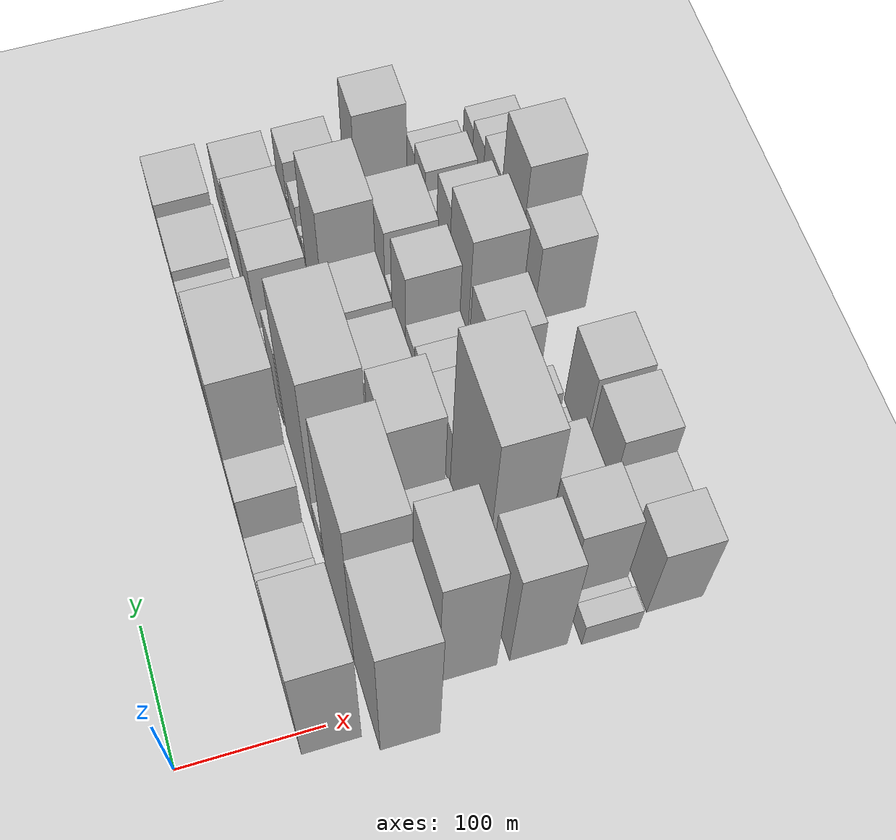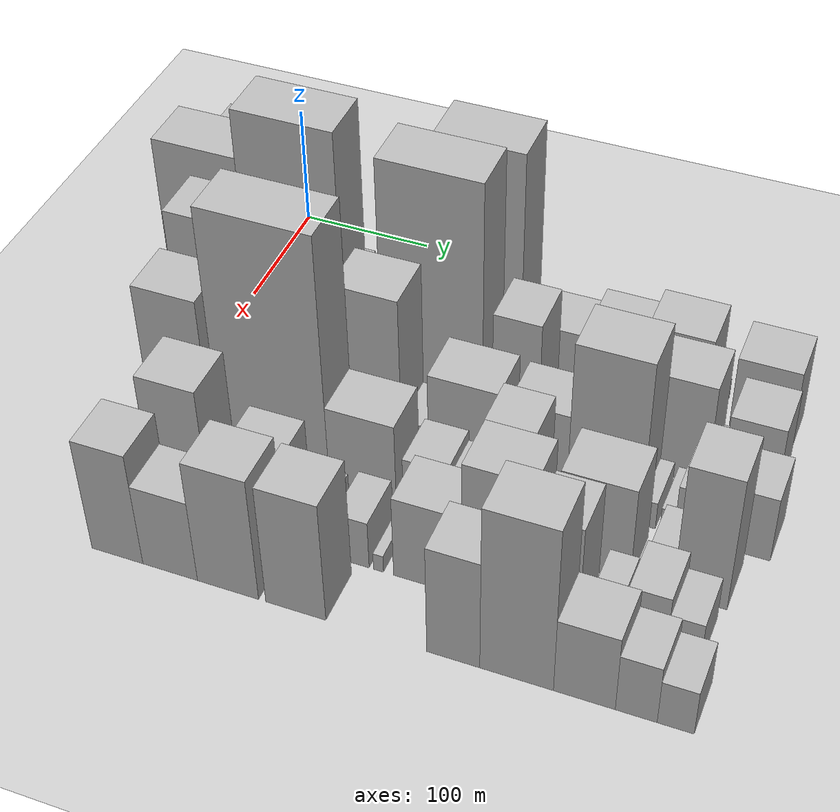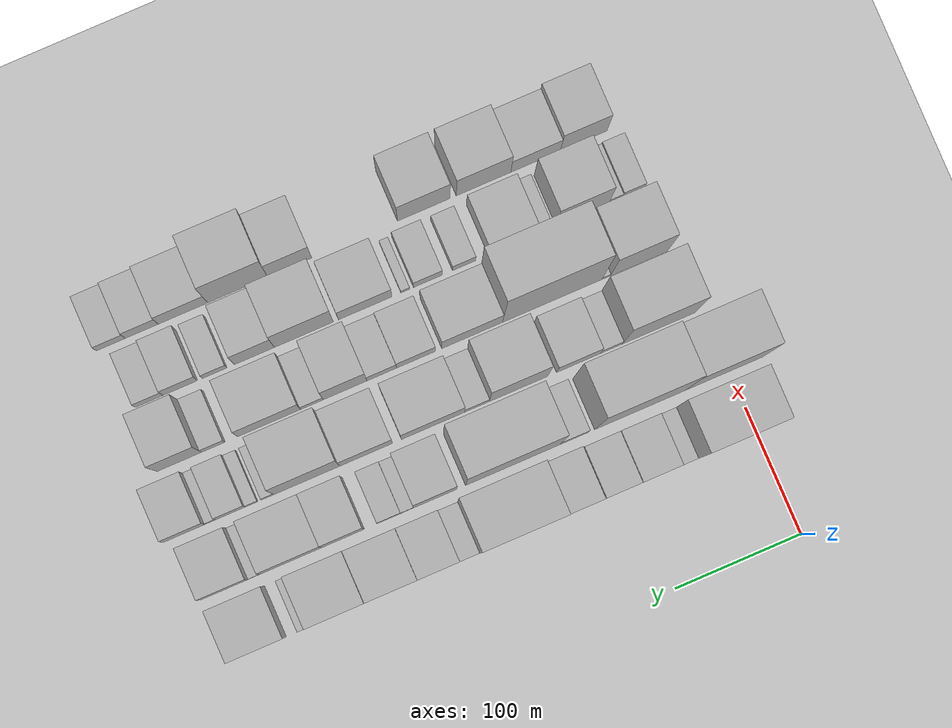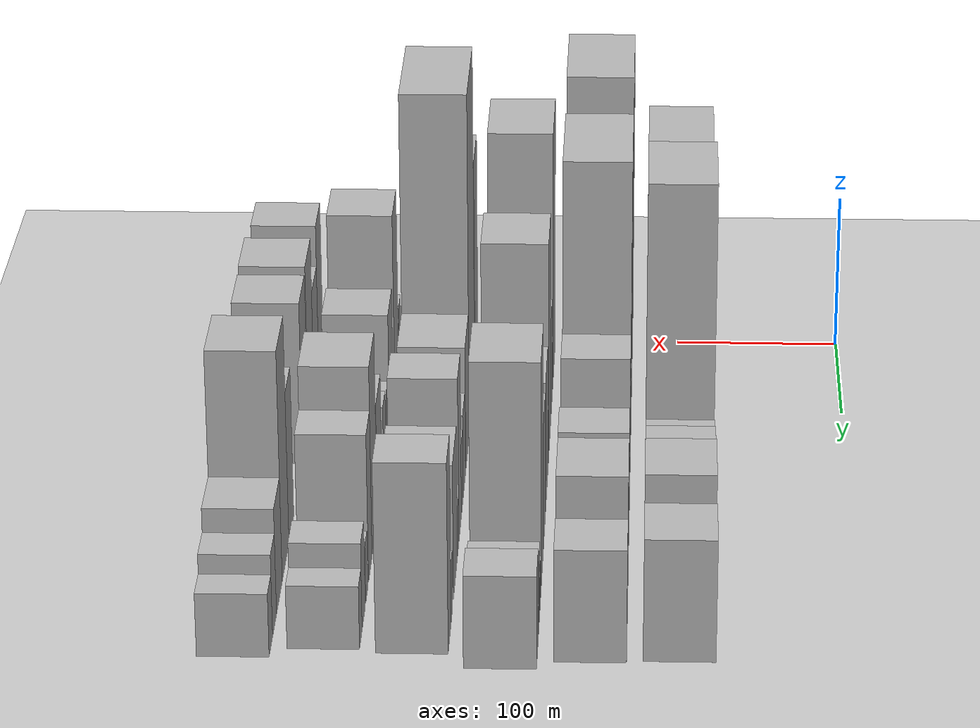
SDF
<sdf version="1.6">
 <world name="default">
  <include>
   <name>ground_plane_2</name>
   <uri>model://HANNAS_ground_plane</uri>
   <pose>100 0 0  0 0 0</pose>
  </include>
  <model name="building_25">
   <static>1</static>
   <pose>100.0000 17.2089 0 0.000000 0.000000 0.000000</pose>
   <link name="link">
    <pose>0 0 78.00 0 0 0</pose>
    <collision name="collision"><geometry><box><size>40.0000 61.8706 156.0000</size></box></geometry></collision>
    <visual name="visual">
     <cast_shadows>0</cast_shadows>
     <geometry><box><size>40.0000 61.8706 156.0000</size></box></geometry>
     <material>
      <script>
       <uri>model://HANNAS_wall/materials/scripts</uri>
       <uri>model://HANNAS_wall/materials/textures</uri>
       <name>vrc/HANNAS_wall</name>
      </script>
     </material>
    </visual>
   </link>
  </model>
  <model name="building_26">
   <static>1</static>
   <pose>100.0000 54.8192 0 0.000000 0.000000 0.000000</pose>
   <link name="link">
    <pose>0 0 13.50 0 0 0</pose>
    <collision name="collision"><geometry><box><size>40.0000 13.3501 27.0000</size></box></geometry></collision>
    <visual name="visual">
     <cast_shadows>0</cast_shadows>
     <geometry><box><size>40.0000 13.3501 27.0000</size></box></geometry>
     <material>
      <script>
       <uri>model://HANNAS_wall/materials/scripts</uri>
       <uri>model://HANNAS_wall/materials/textures</uri>
       <name>vrc/HANNAS_wall</name>
      </script>
     </material>
    </visual>
   </link>
  </model>
  <model name="building_27">
   <static>1</static>
   <pose>100.0000 77.1365 0 0.000000 0.000000 0.000000</pose>
   <link name="link">
    <pose>0 0 27.00 0 0 0</pose>
    <collision name="collision"><geometry><box><size>40.0000 31.2846 54.0000</size></box></geometry></collision>
    <visual name="visual">
     <cast_shadows>0</cast_shadows>
     <geometry><box><size>40.0000 31.2846 54.0000</size></box></geometry>
     <material>
      <script>
       <uri>model://HANNAS_wall/materials/scripts</uri>
       <uri>model://HANNAS_wall/materials/textures</uri>
       <name>vrc/HANNAS_wall</name>
      </script>
     </material>
    </visual>
   </link>
  </model>
  <model name="building_28">
   <static>1</static>
   <pose>100.0000 106.9000 0 0.000000 0.000000 0.000000</pose>
   <link name="link">
    <pose>0 0 24.00 0 0 0</pose>
    <collision name="collision"><geometry><box><size>40.0000 28.2425 48.0000</size></box></geometry></collision>
    <visual name="visual">
     <cast_shadows>0</cast_shadows>
     <geometry><box><size>40.0000 28.2425 48.0000</size></box></geometry>
     <material>
      <script>
       <uri>model://HANNAS_wall/materials/scripts</uri>
       <uri>model://HANNAS_wall/materials/textures</uri>
       <name>vrc/HANNAS_wall</name>
      </script>
     </material>
    </visual>
   </link>
  </model>
  <model name="building_29">
   <static>1</static>
   <pose>100.0000 139.3594 0 0.000000 0.000000 0.000000</pose>
   <link name="link">
    <pose>0 0 49.50 0 0 0</pose>
    <collision name="collision"><geometry><box><size>40.0000 30.6763 99.0000</size></box></geometry></collision>
    <visual name="visual">
     <cast_shadows>0</cast_shadows>
     <geometry><box><size>40.0000 30.6763 99.0000</size></box></geometry>
     <material>
      <script>
       <uri>model://HANNAS_wall/materials/scripts</uri>
       <uri>model://HANNAS_wall/materials/textures</uri>
       <name>vrc/HANNAS_wall</name>
      </script>
     </material>
    </visual>
   </link>
  </model>
  <model name="building_30">
   <static>1</static>
   <pose>100.0000 187.0730 0 0.000000 0.000000 0.000000</pose>
   <link name="link">
    <pose>0 0 100.50 0 0 0</pose>
    <collision name="collision"><geometry><box><size>40.0000 64.7509 201.0000</size></box></geometry></collision>
    <visual name="visual">
     <cast_shadows>0</cast_shadows>
     <geometry><box><size>40.0000 64.7509 201.0000</size></box></geometry>
     <material>
      <script>
       <uri>model://HANNAS_wall/materials/scripts</uri>
       <uri>model://HANNAS_wall/materials/textures</uri>
       <name>vrc/HANNAS_wall</name>
      </script>
     </material>
    </visual>
   </link>
  </model>
  <model name="building_31">
   <static>1</static>
   <pose>100.0000 227.3169 0 0.000000 0.000000 0.000000</pose>
   <link name="link">
    <pose>0 0 15.00 0 0 0</pose>
    <collision name="collision"><geometry><box><size>40.0000 15.7369 30.0000</size></box></geometry></collision>
    <visual name="visual">
     <cast_shadows>0</cast_shadows>
     <geometry><box><size>40.0000 15.7369 30.0000</size></box></geometry>
     <material>
      <script>
       <uri>model://HANNAS_wall/materials/scripts</uri>
       <uri>model://HANNAS_wall/materials/textures</uri>
       <name>vrc/HANNAS_wall</name>
      </script>
     </material>
    </visual>
   </link>
  </model>
  <model name="building_32">
   <static>1</static>
   <pose>100.0000 251.6223 0 0.000000 0.000000 0.000000</pose>
   <link name="link">
    <pose>0 0 30.00 0 0 0</pose>
    <collision name="collision"><geometry><box><size>40.0000 32.8740 60.0000</size></box></geometry></collision>
    <visual name="visual">
     <cast_shadows>0</cast_shadows>
     <geometry><box><size>40.0000 32.8740 60.0000</size></box></geometry>
     <material>
      <script>
       <uri>model://HANNAS_wall/materials/scripts</uri>
       <uri>model://HANNAS_wall/materials/textures</uri>
       <name>vrc/HANNAS_wall</name>
      </script>
     </material>
    </visual>
   </link>
  </model>
  <model name="building_33">
   <static>1</static>
   <pose>100.0000 288.4616 0 0.000000 0.000000 0.000000</pose>
   <link name="link">
    <pose>0 0 36.00 0 0 0</pose>
    <collision name="collision"><geometry><box><size>40.0000 40.8045 72.0000</size></box></geometry></collision>
    <visual name="visual">
     <cast_shadows>0</cast_shadows>
     <geometry><box><size>40.0000 40.8045 72.0000</size></box></geometry>
     <material>
      <script>
       <uri>model://HANNAS_wall/materials/scripts</uri>
       <uri>model://HANNAS_wall/materials/textures</uri>
       <name>vrc/HANNAS_wall</name>
      </script>
     </material>
    </visual>
   </link>
  </model>
  <model name="building_34">
   <static>1</static>
   <pose>100.0000 331.8879 0 0.000000 0.000000 0.000000</pose>
   <link name="link">
    <pose>0 0 42.00 0 0 0</pose>
    <collision name="collision"><geometry><box><size>40.0000 46.0480 84.0000</size></box></geometry></collision>
    <visual name="visual">
     <cast_shadows>0</cast_shadows>
     <geometry><box><size>40.0000 46.0480 84.0000</size></box></geometry>
     <material>
      <script>
       <uri>model://HANNAS_wall/materials/scripts</uri>
       <uri>model://HANNAS_wall/materials/textures</uri>
       <name>vrc/HANNAS_wall</name>
      </script>
     </material>
    </visual>
   </link>
  </model>
  <model name="building_35">
   <static>1</static>
   <pose>100.0000 358.6798 0 0.000000 0.000000 0.000000</pose>
   <link name="link">
    <pose>0 0 9.00 0 0 0</pose>
    <collision name="collision"><geometry><box><size>40.0000 7.5359 18.0000</size></box></geometry></collision>
    <visual name="visual">
     <cast_shadows>0</cast_shadows>
     <geometry><box><size>40.0000 7.5359 18.0000</size></box></geometry>
     <material>
      <script>
       <uri>model://HANNAS_wall/materials/scripts</uri>
       <uri>model://HANNAS_wall/materials/textures</uri>
       <name>vrc/HANNAS_wall</name>
      </script>
     </material>
    </visual>
   </link>
  </model>
  <model name="building_36">
   <static>1</static>
   <pose>100.0000 393.4195 0 0.000000 0.000000 0.000000</pose>
   <link name="link">
    <pose>0 0 37.50 0 0 0</pose>
    <collision name="collision"><geometry><box><size>40.0000 43.9435 75.0000</size></box></geometry></collision>
    <visual name="visual">
     <cast_shadows>0</cast_shadows>
     <geometry><box><size>40.0000 43.9435 75.0000</size></box></geometry>
     <material>
      <script>
       <uri>model://HANNAS_wall/materials/scripts</uri>
       <uri>model://HANNAS_wall/materials/textures</uri>
       <name>vrc/HANNAS_wall</name>
      </script>
     </material>
    </visual>
   </link>
  </model>
  <model name="building_69">
   <static>1</static>
   <pose>149.0000 4.9177 0 0.000000 0.000000 0.000000</pose>
   <link name="link">
    <pose>0 0 91.50 0 0 0</pose>
    <collision name="collision"><geometry><box><size>40.0000 61.0801 183.0000</size></box></geometry></collision>
    <visual name="visual">
     <cast_shadows>0</cast_shadows>
     <geometry><box><size>40.0000 61.0801 183.0000</size></box></geometry>
     <material>
      <script>
       <uri>model://HANNAS_wall/materials/scripts</uri>
       <uri>model://HANNAS_wall/materials/textures</uri>
       <name>vrc/HANNAS_wall</name>
      </script>
     </material>
    </visual>
   </link>
  </model>
  <model name="building_70">
   <static>1</static>
   <pose>149.0000 71.3182 0 0.000000 0.000000 0.000000</pose>
   <link name="link">
    <pose>0 0 111.00 0 0 0</pose>
    <collision name="collision"><geometry><box><size>40.0000 71.7209 222.0000</size></box></geometry></collision>
    <visual name="visual">
     <cast_shadows>0</cast_shadows>
     <geometry><box><size>40.0000 71.7209 222.0000</size></box></geometry>
     <material>
      <script>
       <uri>model://HANNAS_wall/materials/scripts</uri>
       <uri>model://HANNAS_wall/materials/textures</uri>
       <name>vrc/HANNAS_wall</name>
      </script>
     </material>
    </visual>
   </link>
  </model>
  <model name="building_71">
   <static>1</static>
   <pose>149.0000 123.4965 0 0.000000 0.000000 0.000000</pose>
   <link name="link">
    <pose>0 0 21.00 0 0 0</pose>
    <collision name="collision"><geometry><box><size>40.0000 22.6356 42.0000</size></box></geometry></collision>
    <visual name="visual">
     <cast_shadows>0</cast_shadows>
     <geometry><box><size>40.0000 22.6356 42.0000</size></box></geometry>
     <material>
      <script>
       <uri>model://HANNAS_wall/materials/scripts</uri>
       <uri>model://HANNAS_wall/materials/textures</uri>
       <name>vrc/HANNAS_wall</name>
      </script>
     </material>
    </visual>
   </link>
  </model>
  <model name="building_72">
   <static>1</static>
   <pose>149.0000 171.9671 0 0.000000 0.000000 0.000000</pose>
   <link name="link">
    <pose>0 0 105.00 0 0 0</pose>
    <collision name="collision"><geometry><box><size>40.0000 74.3057 210.0000</size></box></geometry></collision>
    <visual name="visual">
     <cast_shadows>0</cast_shadows>
     <geometry><box><size>40.0000 74.3057 210.0000</size></box></geometry>
     <material>
      <script>
       <uri>model://HANNAS_wall/materials/scripts</uri>
       <uri>model://HANNAS_wall/materials/textures</uri>
       <name>vrc/HANNAS_wall</name>
      </script>
     </material>
    </visual>
   </link>
  </model>
  <model name="building_73">
   <static>1</static>
   <pose>149.0000 233.1478 0 0.000000 0.000000 0.000000</pose>
   <link name="link">
    <pose>0 0 52.50 0 0 0</pose>
    <collision name="collision"><geometry><box><size>40.0000 34.0557 105.0000</size></box></geometry></collision>
    <visual name="visual">
     <cast_shadows>0</cast_shadows>
     <geometry><box><size>40.0000 34.0557 105.0000</size></box></geometry>
     <material>
      <script>
       <uri>model://HANNAS_wall/materials/scripts</uri>
       <uri>model://HANNAS_wall/materials/textures</uri>
       <name>vrc/HANNAS_wall</name>
      </script>
     </material>
    </visual>
   </link>
  </model>
  <model name="building_74">
   <static>1</static>
   <pose>149.0000 255.2530 0 0.000000 0.000000 0.000000</pose>
   <link name="link">
    <pose>0 0 12.00 0 0 0</pose>
    <collision name="collision"><geometry><box><size>40.0000 10.1547 24.0000</size></box></geometry></collision>
    <visual name="visual">
     <cast_shadows>0</cast_shadows>
     <geometry><box><size>40.0000 10.1547 24.0000</size></box></geometry>
     <material>
      <script>
       <uri>model://HANNAS_wall/materials/scripts</uri>
       <uri>model://HANNAS_wall/materials/textures</uri>
       <name>vrc/HANNAS_wall</name>
      </script>
     </material>
    </visual>
   </link>
  </model>
  <model name="building_75">
   <static>1</static>
   <pose>149.0000 269.5884 0 0.000000 0.000000 0.000000</pose>
   <link name="link">
    <pose>0 0 16.50 0 0 0</pose>
    <collision name="collision"><geometry><box><size>40.0000 18.5161 33.0000</size></box></geometry></collision>
    <visual name="visual">
     <cast_shadows>0</cast_shadows>
     <geometry><box><size>40.0000 18.5161 33.0000</size></box></geometry>
     <material>
      <script>
       <uri>model://HANNAS_wall/materials/scripts</uri>
       <uri>model://HANNAS_wall/materials/textures</uri>
       <name>vrc/HANNAS_wall</name>
      </script>
     </material>
    </visual>
   </link>
  </model>
  <model name="building_76">
   <static>1</static>
   <pose>149.0000 305.3534 0 0.000000 0.000000 0.000000</pose>
   <link name="link">
    <pose>0 0 46.50 0 0 0</pose>
    <collision name="collision"><geometry><box><size>40.0000 33.0138 93.0000</size></box></geometry></collision>
    <visual name="visual">
     <cast_shadows>0</cast_shadows>
     <geometry><box><size>40.0000 33.0138 93.0000</size></box></geometry>
     <material>
      <script>
       <uri>model://HANNAS_wall/materials/scripts</uri>
       <uri>model://HANNAS_wall/materials/textures</uri>
       <name>vrc/HANNAS_wall</name>
      </script>
     </material>
    </visual>
   </link>
  </model>
  <model name="building_77">
   <static>1</static>
   <pose>149.0000 345.8923 0 0.000000 0.000000 0.000000</pose>
   <link name="link">
    <pose>0 0 45.00 0 0 0</pose>
    <collision name="collision"><geometry><box><size>40.0000 48.0641 90.0000</size></box></geometry></collision>
    <visual name="visual">
     <cast_shadows>0</cast_shadows>
     <geometry><box><size>40.0000 48.0641 90.0000</size></box></geometry>
     <material>
      <script>
       <uri>model://HANNAS_wall/materials/scripts</uri>
       <uri>model://HANNAS_wall/materials/textures</uri>
       <name>vrc/HANNAS_wall</name>
      </script>
     </material>
    </visual>
   </link>
  </model>
  <model name="building_78">
   <static>1</static>
   <pose>149.0000 374.8563 0 0.000000 0.000000 0.000000</pose>
   <link name="link">
    <pose>0 0 10.50 0 0 0</pose>
    <collision name="collision"><geometry><box><size>40.0000 9.8639 21.0000</size></box></geometry></collision>
    <visual name="visual">
     <cast_shadows>0</cast_shadows>
     <geometry><box><size>40.0000 9.8639 21.0000</size></box></geometry>
     <material>
      <script>
       <uri>model://HANNAS_wall/materials/scripts</uri>
       <uri>model://HANNAS_wall/materials/textures</uri>
       <name>vrc/HANNAS_wall</name>
      </script>
     </material>
    </visual>
   </link>
  </model>
  <model name="building_79">
   <static>1</static>
   <pose>149.0000 398.5782 0 0.000000 0.000000 0.000000</pose>
   <link name="link">
    <pose>0 0 34.50 0 0 0</pose>
    <collision name="collision"><geometry><box><size>40.0000 37.5798 69.0000</size></box></geometry></collision>
    <visual name="visual">
     <cast_shadows>0</cast_shadows>
     <geometry><box><size>40.0000 37.5798 69.0000</size></box></geometry>
     <material>
      <script>
       <uri>model://HANNAS_wall/materials/scripts</uri>
       <uri>model://HANNAS_wall/materials/textures</uri>
       <name>vrc/HANNAS_wall</name>
      </script>
     </material>
    </visual>
   </link>
  </model>
  <model name="building_114">
   <static>1</static>
   <pose>198.0000 35.4168 0 0.000000 0.000000 0.000000</pose>
   <link name="link">
    <pose>0 0 84.00 0 0 0</pose>
    <collision name="collision"><geometry><box><size>40.0000 57.6009 168.0000</size></box></geometry></collision>
    <visual name="visual">
     <cast_shadows>0</cast_shadows>
     <geometry><box><size>40.0000 57.6009 168.0000</size></box></geometry>
     <material>
      <script>
       <uri>model://HANNAS_wall/materials/scripts</uri>
       <uri>model://HANNAS_wall/materials/textures</uri>
       <name>vrc/HANNAS_wall</name>
      </script>
     </material>
    </visual>
   </link>
  </model>
  <model name="building_115">
   <static>1</static>
   <pose>198.0000 72.8613 0 0.000000 0.000000 0.000000</pose>
   <link name="link">
    <pose>0 0 16.50 0 0 0</pose>
    <collision name="collision"><geometry><box><size>40.0000 17.2882 33.0000</size></box></geometry></collision>
    <visual name="visual">
     <cast_shadows>0</cast_shadows>
     <geometry><box><size>40.0000 17.2882 33.0000</size></box></geometry>
     <material>
      <script>
       <uri>model://HANNAS_wall/materials/scripts</uri>
       <uri>model://HANNAS_wall/materials/textures</uri>
       <name>vrc/HANNAS_wall</name>
      </script>
     </material>
    </visual>
   </link>
  </model>
  <model name="building_116">
   <static>1</static>
   <pose>198.0000 98.7716 0 0.000000 0.000000 0.000000</pose>
   <link name="link">
    <pose>0 0 33.00 0 0 0</pose>
    <collision name="collision"><geometry><box><size>40.0000 34.5324 66.0000</size></box></geometry></collision>
    <visual name="visual">
     <cast_shadows>0</cast_shadows>
     <geometry><box><size>40.0000 34.5324 66.0000</size></box></geometry>
     <material>
      <script>
       <uri>model://HANNAS_wall/materials/scripts</uri>
       <uri>model://HANNAS_wall/materials/textures</uri>
       <name>vrc/HANNAS_wall</name>
      </script>
     </material>
    </visual>
   </link>
  </model>
  <model name="building_117">
   <static>1</static>
   <pose>198.0000 146.1506 0 0.000000 0.000000 0.000000</pose>
   <link name="link">
    <pose>0 0 70.50 0 0 0</pose>
    <collision name="collision"><geometry><box><size>40.0000 46.2255 141.0000</size></box></geometry></collision>
    <visual name="visual">
     <cast_shadows>0</cast_shadows>
     <geometry><box><size>40.0000 46.2255 141.0000</size></box></geometry>
     <material>
      <script>
       <uri>model://HANNAS_wall/materials/scripts</uri>
       <uri>model://HANNAS_wall/materials/textures</uri>
       <name>vrc/HANNAS_wall</name>
      </script>
     </material>
    </visual>
   </link>
  </model>
  <model name="building_118">
   <static>1</static>
   <pose>198.0000 178.9549 0 0.000000 0.000000 0.000000</pose>
   <link name="link">
    <pose>0 0 18.00 0 0 0</pose>
    <collision name="collision"><geometry><box><size>40.0000 19.3832 36.0000</size></box></geometry></collision>
    <visual name="visual">
     <cast_shadows>0</cast_shadows>
     <geometry><box><size>40.0000 19.3832 36.0000</size></box></geometry>
     <material>
      <script>
       <uri>model://HANNAS_wall/materials/scripts</uri>
       <uri>model://HANNAS_wall/materials/textures</uri>
       <name>vrc/HANNAS_wall</name>
      </script>
     </material>
    </visual>
   </link>
  </model>
  <model name="building_119">
   <static>1</static>
   <pose>198.0000 213.5854 0 0.000000 0.000000 0.000000</pose>
   <link name="link">
    <pose>0 0 42.00 0 0 0</pose>
    <collision name="collision"><geometry><box><size>40.0000 49.8778 84.0000</size></box></geometry></collision>
    <visual name="visual">
     <cast_shadows>0</cast_shadows>
     <geometry><box><size>40.0000 49.8778 84.0000</size></box></geometry>
     <material>
      <script>
       <uri>model://HANNAS_wall/materials/scripts</uri>
       <uri>model://HANNAS_wall/materials/textures</uri>
       <name>vrc/HANNAS_wall</name>
      </script>
     </material>
    </visual>
   </link>
  </model>
  <model name="building_120">
   <static>1</static>
   <pose>198.0000 266.2450 0 0.000000 0.000000 0.000000</pose>
   <link name="link">
    <pose>0 0 40.50 0 0 0</pose>
    <collision name="collision"><geometry><box><size>40.0000 41.4412 81.0000</size></box></geometry></collision>
    <visual name="visual">
     <cast_shadows>0</cast_shadows>
     <geometry><box><size>40.0000 41.4412 81.0000</size></box></geometry>
     <material>
      <script>
       <uri>model://HANNAS_wall/materials/scripts</uri>
       <uri>model://HANNAS_wall/materials/textures</uri>
       <name>vrc/HANNAS_wall</name>
      </script>
     </material>
    </visual>
   </link>
  </model>
  <model name="building_121">
   <static>1</static>
   <pose>198.0000 312.8597 0 0.000000 0.000000 0.000000</pose>
   <link name="link">
    <pose>0 0 72.00 0 0 0</pose>
    <collision name="collision"><geometry><box><size>40.0000 51.7882 144.0000</size></box></geometry></collision>
    <visual name="visual">
     <cast_shadows>0</cast_shadows>
     <geometry><box><size>40.0000 51.7882 144.0000</size></box></geometry>
     <material>
      <script>
       <uri>model://HANNAS_wall/materials/scripts</uri>
       <uri>model://HANNAS_wall/materials/textures</uri>
       <name>vrc/HANNAS_wall</name>
      </script>
     </material>
    </visual>
   </link>
  </model>
  <model name="building_122">
   <static>1</static>
   <pose>198.0000 343.7553 0 0.000000 0.000000 0.000000</pose>
   <link name="link">
    <pose>0 0 12.00 0 0 0</pose>
    <collision name="collision"><geometry><box><size>40.0000 10.0031 24.0000</size></box></geometry></collision>
    <visual name="visual">
     <cast_shadows>0</cast_shadows>
     <geometry><box><size>40.0000 10.0031 24.0000</size></box></geometry>
     <material>
      <script>
       <uri>model://HANNAS_wall/materials/scripts</uri>
       <uri>model://HANNAS_wall/materials/textures</uri>
       <name>vrc/HANNAS_wall</name>
      </script>
     </material>
    </visual>
   </link>
  </model>
  <model name="building_123">
   <static>1</static>
   <pose>198.0000 356.6241 0 0.000000 0.000000 0.000000</pose>
   <link name="link">
    <pose>0 0 10.50 0 0 0</pose>
    <collision name="collision"><geometry><box><size>40.0000 9.7346 21.0000</size></box></geometry></collision>
    <visual name="visual">
     <cast_shadows>0</cast_shadows>
     <geometry><box><size>40.0000 9.7346 21.0000</size></box></geometry>
     <material>
      <script>
       <uri>model://HANNAS_wall/materials/scripts</uri>
       <uri>model://HANNAS_wall/materials/textures</uri>
       <name>vrc/HANNAS_wall</name>
      </script>
     </material>
    </visual>
   </link>
  </model>
  <model name="building_124">
   <static>1</static>
   <pose>198.0000 373.1696 0 0.000000 0.000000 0.000000</pose>
   <link name="link">
    <pose>0 0 22.50 0 0 0</pose>
    <collision name="collision"><geometry><box><size>40.0000 23.3564 45.0000</size></box></geometry></collision>
    <visual name="visual">
     <cast_shadows>0</cast_shadows>
     <geometry><box><size>40.0000 23.3564 45.0000</size></box></geometry>
     <material>
      <script>
       <uri>model://HANNAS_wall/materials/scripts</uri>
       <uri>model://HANNAS_wall/materials/textures</uri>
       <name>vrc/HANNAS_wall</name>
      </script>
     </material>
    </visual>
   </link>
  </model>
  <model name="building_125">
   <static>1</static>
   <pose>198.0000 388.9677 0 0.000000 0.000000 0.000000</pose>
   <link name="link">
    <pose>0 0 9.00 0 0 0</pose>
    <collision name="collision"><geometry><box><size>40.0000 8.2398 18.0000</size></box></geometry></collision>
    <visual name="visual">
     <cast_shadows>0</cast_shadows>
     <geometry><box><size>40.0000 8.2398 18.0000</size></box></geometry>
     <material>
      <script>
       <uri>model://HANNAS_wall/materials/scripts</uri>
       <uri>model://HANNAS_wall/materials/textures</uri>
       <name>vrc/HANNAS_wall</name>
      </script>
     </material>
    </visual>
   </link>
  </model>
  <model name="building_126">
   <static>1</static>
   <pose>198.0000 409.4354 0 0.000000 0.000000 0.000000</pose>
   <link name="link">
    <pose>0 0 28.50 0 0 0</pose>
    <collision name="collision"><geometry><box><size>40.0000 32.6957 57.0000</size></box></geometry></collision>
    <visual name="visual">
     <cast_shadows>0</cast_shadows>
     <geometry><box><size>40.0000 32.6957 57.0000</size></box></geometry>
     <material>
      <script>
       <uri>model://HANNAS_wall/materials/scripts</uri>
       <uri>model://HANNAS_wall/materials/textures</uri>
       <name>vrc/HANNAS_wall</name>
      </script>
     </material>
    </visual>
   </link>
  </model>
  <model name="building_162">
   <static>1</static>
   <pose>247.0000 29.4783 0 0.000000 0.000000 0.000000</pose>
   <link name="link">
    <pose>0 0 72.00 0 0 0</pose>
    <collision name="collision"><geometry><box><size>40.0000 45.3688 144.0000</size></box></geometry></collision>
    <visual name="visual">
     <cast_shadows>0</cast_shadows>
     <geometry><box><size>40.0000 45.3688 144.0000</size></box></geometry>
     <material>
      <script>
       <uri>model://HANNAS_wall/materials/scripts</uri>
       <uri>model://HANNAS_wall/materials/textures</uri>
       <name>vrc/HANNAS_wall</name>
      </script>
     </material>
    </visual>
   </link>
  </model>
  <model name="building_163">
   <static>1</static>
   <pose>247.0000 55.5226 0 0.000000 0.000000 0.000000</pose>
   <link name="link">
    <pose>0 0 7.50 0 0 0</pose>
    <collision name="collision"><geometry><box><size>40.0000 6.7197 15.0000</size></box></geometry></collision>
    <visual name="visual">
     <cast_shadows>0</cast_shadows>
     <geometry><box><size>40.0000 6.7197 15.0000</size></box></geometry>
     <material>
      <script>
       <uri>model://HANNAS_wall/materials/scripts</uri>
       <uri>model://HANNAS_wall/materials/textures</uri>
       <name>vrc/HANNAS_wall</name>
      </script>
     </material>
    </visual>
   </link>
  </model>
  <model name="building_164">
   <static>1</static>
   <pose>247.0000 98.2314 0 0.000000 0.000000 0.000000</pose>
   <link name="link">
    <pose>0 0 111.00 0 0 0</pose>
    <collision name="collision"><geometry><box><size>40.0000 78.6979 222.0000</size></box></geometry></collision>
    <visual name="visual">
     <cast_shadows>0</cast_shadows>
     <geometry><box><size>40.0000 78.6979 222.0000</size></box></geometry>
     <material>
      <script>
       <uri>model://HANNAS_wall/materials/scripts</uri>
       <uri>model://HANNAS_wall/materials/textures</uri>
       <name>vrc/HANNAS_wall</name>
      </script>
     </material>
    </visual>
   </link>
  </model>
  <model name="building_165">
   <static>1</static>
   <pose>247.0000 161.5563 0 0.000000 0.000000 0.000000</pose>
   <link name="link">
    <pose>0 0 40.50 0 0 0</pose>
    <collision name="collision"><geometry><box><size>40.0000 47.9520 81.0000</size></box></geometry></collision>
    <visual name="visual">
     <cast_shadows>0</cast_shadows>
     <geometry><box><size>40.0000 47.9520 81.0000</size></box></geometry>
     <material>
      <script>
       <uri>model://HANNAS_wall/materials/scripts</uri>
       <uri>model://HANNAS_wall/materials/textures</uri>
       <name>vrc/HANNAS_wall</name>
      </script>
     </material>
    </visual>
   </link>
  </model>
  <model name="building_166">
   <static>1</static>
   <pose>247.0000 205.8961 0 0.000000 0.000000 0.000000</pose>
   <link name="link">
    <pose>0 0 27.00 0 0 0</pose>
    <collision name="collision"><geometry><box><size>40.0000 30.7275 54.0000</size></box></geometry></collision>
    <visual name="visual">
     <cast_shadows>0</cast_shadows>
     <geometry><box><size>40.0000 30.7275 54.0000</size></box></geometry>
     <material>
      <script>
       <uri>model://HANNAS_wall/materials/scripts</uri>
       <uri>model://HANNAS_wall/materials/textures</uri>
       <name>vrc/HANNAS_wall</name>
      </script>
     </material>
    </visual>
   </link>
  </model>
  <model name="building_167">
   <static>1</static>
   <pose>247.0000 232.9688 0 0.000000 0.000000 0.000000</pose>
   <link name="link">
    <pose>0 0 22.50 0 0 0</pose>
    <collision name="collision"><geometry><box><size>40.0000 23.4178 45.0000</size></box></geometry></collision>
    <visual name="visual">
     <cast_shadows>0</cast_shadows>
     <geometry><box><size>40.0000 23.4178 45.0000</size></box></geometry>
     <material>
      <script>
       <uri>model://HANNAS_wall/materials/scripts</uri>
       <uri>model://HANNAS_wall/materials/textures</uri>
       <name>vrc/HANNAS_wall</name>
      </script>
     </material>
    </visual>
   </link>
  </model>
  <model name="building_168">
   <static>1</static>
   <pose>247.0000 261.8879 0 0.000000 0.000000 0.000000</pose>
   <link name="link">
    <pose>0 0 52.50 0 0 0</pose>
    <collision name="collision"><geometry><box><size>40.0000 34.4205 105.0000</size></box></geometry></collision>
    <visual name="visual">
     <cast_shadows>0</cast_shadows>
     <geometry><box><size>40.0000 34.4205 105.0000</size></box></geometry>
     <material>
      <script>
       <uri>model://HANNAS_wall/materials/scripts</uri>
       <uri>model://HANNAS_wall/materials/textures</uri>
       <name>vrc/HANNAS_wall</name>
      </script>
     </material>
    </visual>
   </link>
  </model>
  <model name="building_169">
   <static>1</static>
   <pose>247.0000 288.0005 0 0.000000 0.000000 0.000000</pose>
   <link name="link">
    <pose>0 0 15.00 0 0 0</pose>
    <collision name="collision"><geometry><box><size>40.0000 17.8047 30.0000</size></box></geometry></collision>
    <visual name="visual">
     <cast_shadows>0</cast_shadows>
     <geometry><box><size>40.0000 17.8047 30.0000</size></box></geometry>
     <material>
      <script>
       <uri>model://HANNAS_wall/materials/scripts</uri>
       <uri>model://HANNAS_wall/materials/textures</uri>
       <name>vrc/HANNAS_wall</name>
      </script>
     </material>
    </visual>
   </link>
  </model>
  <model name="building_170">
   <static>1</static>
   <pose>247.0000 321.7144 0 0.000000 0.000000 0.000000</pose>
   <link name="link">
    <pose>0 0 42.00 0 0 0</pose>
    <collision name="collision"><geometry><box><size>40.0000 49.6230 84.0000</size></box></geometry></collision>
    <visual name="visual">
     <cast_shadows>0</cast_shadows>
     <geometry><box><size>40.0000 49.6230 84.0000</size></box></geometry>
     <material>
      <script>
       <uri>model://HANNAS_wall/materials/scripts</uri>
       <uri>model://HANNAS_wall/materials/textures</uri>
       <name>vrc/HANNAS_wall</name>
      </script>
     </material>
    </visual>
   </link>
  </model>
  <model name="building_171">
   <static>1</static>
   <pose>247.0000 365.6499 0 0.000000 0.000000 0.000000</pose>
   <link name="link">
    <pose>0 0 18.00 0 0 0</pose>
    <collision name="collision"><geometry><box><size>40.0000 18.2480 36.0000</size></box></geometry></collision>
    <visual name="visual">
     <cast_shadows>0</cast_shadows>
     <geometry><box><size>40.0000 18.2480 36.0000</size></box></geometry>
     <material>
      <script>
       <uri>model://HANNAS_wall/materials/scripts</uri>
       <uri>model://HANNAS_wall/materials/textures</uri>
       <name>vrc/HANNAS_wall</name>
      </script>
     </material>
    </visual>
   </link>
  </model>
  <model name="building_172">
   <static>1</static>
   <pose>247.0000 392.4351 0 0.000000 0.000000 0.000000</pose>
   <link name="link">
    <pose>0 0 58.50 0 0 0</pose>
    <collision name="collision"><geometry><box><size>40.0000 35.3224 117.0000</size></box></geometry></collision>
    <visual name="visual">
     <cast_shadows>0</cast_shadows>
     <geometry><box><size>40.0000 35.3224 117.0000</size></box></geometry>
     <material>
      <script>
       <uri>model://HANNAS_wall/materials/scripts</uri>
       <uri>model://HANNAS_wall/materials/textures</uri>
       <name>vrc/HANNAS_wall</name>
      </script>
     </material>
    </visual>
   </link>
  </model>
  <model name="building_209">
   <static>1</static>
   <pose>296.0000 12.3411 0 0.000000 0.000000 0.000000</pose>
   <link name="link">
    <pose>0 0 16.50 0 0 0</pose>
    <collision name="collision"><geometry><box><size>40.0000 17.5807 33.0000</size></box></geometry></collision>
    <visual name="visual">
     <cast_shadows>0</cast_shadows>
     <geometry><box><size>40.0000 17.5807 33.0000</size></box></geometry>
     <material>
      <script>
       <uri>model://HANNAS_wall/materials/scripts</uri>
       <uri>model://HANNAS_wall/materials/textures</uri>
       <name>vrc/HANNAS_wall</name>
      </script>
     </material>
    </visual>
   </link>
  </model>
  <model name="building_210">
   <static>1</static>
   <pose>296.0000 26.5207 0 0.000000 0.000000 0.000000</pose>
   <link name="link">
    <pose>0 0 12.00 0 0 0</pose>
    <collision name="collision"><geometry><box><size>40.0000 10.7784 24.0000</size></box></geometry></collision>
    <visual name="visual">
     <cast_shadows>0</cast_shadows>
     <geometry><box><size>40.0000 10.7784 24.0000</size></box></geometry>
     <material>
      <script>
       <uri>model://HANNAS_wall/materials/scripts</uri>
       <uri>model://HANNAS_wall/materials/textures</uri>
       <name>vrc/HANNAS_wall</name>
      </script>
     </material>
    </visual>
   </link>
  </model>
  <model name="building_211">
   <static>1</static>
   <pose>296.0000 52.9325 0 0.000000 0.000000 0.000000</pose>
   <link name="link">
    <pose>0 0 58.50 0 0 0</pose>
    <collision name="collision"><geometry><box><size>40.0000 42.0452 117.0000</size></box></geometry></collision>
    <visual name="visual">
     <cast_shadows>0</cast_shadows>
     <geometry><box><size>40.0000 42.0452 117.0000</size></box></geometry>
     <material>
      <script>
       <uri>model://HANNAS_wall/materials/scripts</uri>
       <uri>model://HANNAS_wall/materials/textures</uri>
       <name>vrc/HANNAS_wall</name>
      </script>
     </material>
    </visual>
   </link>
  </model>
  <model name="building_212">
   <static>1</static>
   <pose>296.0000 82.8889 0 0.000000 0.000000 0.000000</pose>
   <link name="link">
    <pose>0 0 12.00 0 0 0</pose>
    <collision name="collision"><geometry><box><size>40.0000 11.8677 24.0000</size></box></geometry></collision>
    <visual name="visual">
     <cast_shadows>0</cast_shadows>
     <geometry><box><size>40.0000 11.8677 24.0000</size></box></geometry>
     <material>
      <script>
       <uri>model://HANNAS_wall/materials/scripts</uri>
       <uri>model://HANNAS_wall/materials/textures</uri>
       <name>vrc/HANNAS_wall</name>
      </script>
     </material>
    </visual>
   </link>
  </model>
  <model name="building_213">
   <static>1</static>
   <pose>296.0000 108.1804 0 0.000000 0.000000 0.000000</pose>
   <link name="link">
    <pose>0 0 37.50 0 0 0</pose>
    <collision name="collision"><geometry><box><size>40.0000 38.7151 75.0000</size></box></geometry></collision>
    <visual name="visual">
     <cast_shadows>0</cast_shadows>
     <geometry><box><size>40.0000 38.7151 75.0000</size></box></geometry>
     <material>
      <script>
       <uri>model://HANNAS_wall/materials/scripts</uri>
       <uri>model://HANNAS_wall/materials/textures</uri>
       <name>vrc/HANNAS_wall</name>
      </script>
     </material>
    </visual>
   </link>
  </model>
  <model name="building_214">
   <static>1</static>
   <pose>296.0000 146.6924 0 0.000000 0.000000 0.000000</pose>
   <link name="link">
    <pose>0 0 18.00 0 0 0</pose>
    <collision name="collision"><geometry><box><size>40.0000 18.3089 36.0000</size></box></geometry></collision>
    <visual name="visual">
     <cast_shadows>0</cast_shadows>
     <geometry><box><size>40.0000 18.3089 36.0000</size></box></geometry>
     <material>
      <script>
       <uri>model://HANNAS_wall/materials/scripts</uri>
       <uri>model://HANNAS_wall/materials/textures</uri>
       <name>vrc/HANNAS_wall</name>
      </script>
     </material>
    </visual>
   </link>
  </model>
  <model name="building_215">
   <static>1</static>
   <pose>296.0000 175.2726 0 0.000000 0.000000 0.000000</pose>
   <link name="link">
    <pose>0 0 21.00 0 0 0</pose>
    <collision name="collision"><geometry><box><size>40.0000 22.8515 42.0000</size></box></geometry></collision>
    <visual name="visual">
     <cast_shadows>0</cast_shadows>
     <geometry><box><size>40.0000 22.8515 42.0000</size></box></geometry>
     <material>
      <script>
       <uri>model://HANNAS_wall/materials/scripts</uri>
       <uri>model://HANNAS_wall/materials/textures</uri>
       <name>vrc/HANNAS_wall</name>
      </script>
     </material>
    </visual>
   </link>
  </model>
  <model name="building_216">
   <static>1</static>
   <pose>296.0000 193.1960 0 0.000000 0.000000 0.000000</pose>
   <link name="link">
    <pose>0 0 7.50 0 0 0</pose>
    <collision name="collision"><geometry><box><size>40.0000 6.9954 15.0000</size></box></geometry></collision>
    <visual name="visual">
     <cast_shadows>0</cast_shadows>
     <geometry><box><size>40.0000 6.9954 15.0000</size></box></geometry>
     <material>
      <script>
       <uri>model://HANNAS_wall/materials/scripts</uri>
       <uri>model://HANNAS_wall/materials/textures</uri>
       <name>vrc/HANNAS_wall</name>
      </script>
     </material>
    </visual>
   </link>
  </model>
  <model name="building_217">
   <static>1</static>
   <pose>296.0000 224.8733 0 0.000000 0.000000 0.000000</pose>
   <link name="link">
    <pose>0 0 36.00 0 0 0</pose>
    <collision name="collision"><geometry><box><size>40.0000 42.3592 72.0000</size></box></geometry></collision>
    <visual name="visual">
     <cast_shadows>0</cast_shadows>
     <geometry><box><size>40.0000 42.3592 72.0000</size></box></geometry>
     <material>
      <script>
       <uri>model://HANNAS_wall/materials/scripts</uri>
       <uri>model://HANNAS_wall/materials/textures</uri>
       <name>vrc/HANNAS_wall</name>
      </script>
     </material>
    </visual>
   </link>
  </model>
  <model name="building_218">
   <static>1</static>
   <pose>296.0000 273.3173 0 0.000000 0.000000 0.000000</pose>
   <link name="link">
    <pose>0 0 60.00 0 0 0</pose>
    <collision name="collision"><geometry><box><size>40.0000 46.5287 120.0000</size></box></geometry></collision>
    <visual name="visual">
     <cast_shadows>0</cast_shadows>
     <geometry><box><size>40.0000 46.5287 120.0000</size></box></geometry>
     <material>
      <script>
       <uri>model://HANNAS_wall/materials/scripts</uri>
       <uri>model://HANNAS_wall/materials/textures</uri>
       <name>vrc/HANNAS_wall</name>
      </script>
     </material>
    </visual>
   </link>
  </model>
  <model name="building_219">
   <static>1</static>
   <pose>296.0000 312.3216 0 0.000000 0.000000 0.000000</pose>
   <link name="link">
    <pose>0 0 46.50 0 0 0</pose>
    <collision name="collision"><geometry><box><size>40.0000 31.4800 93.0000</size></box></geometry></collision>
    <visual name="visual">
     <cast_shadows>0</cast_shadows>
     <geometry><box><size>40.0000 31.4800 93.0000</size></box></geometry>
     <material>
      <script>
       <uri>model://HANNAS_wall/materials/scripts</uri>
       <uri>model://HANNAS_wall/materials/textures</uri>
       <name>vrc/HANNAS_wall</name>
      </script>
     </material>
    </visual>
   </link>
  </model>
  <model name="building_220">
   <static>1</static>
   <pose>296.0000 343.6805 0 0.000000 0.000000 0.000000</pose>
   <link name="link">
    <pose>0 0 18.00 0 0 0</pose>
    <collision name="collision"><geometry><box><size>40.0000 19.2378 36.0000</size></box></geometry></collision>
    <visual name="visual">
     <cast_shadows>0</cast_shadows>
     <geometry><box><size>40.0000 19.2378 36.0000</size></box></geometry>
     <material>
      <script>
       <uri>model://HANNAS_wall/materials/scripts</uri>
       <uri>model://HANNAS_wall/materials/textures</uri>
       <name>vrc/HANNAS_wall</name>
      </script>
     </material>
    </visual>
   </link>
  </model>
  <model name="building_221">
   <static>1</static>
   <pose>296.0000 370.8775 0 0.000000 0.000000 0.000000</pose>
   <link name="link">
    <pose>0 0 27.00 0 0 0</pose>
    <collision name="collision"><geometry><box><size>40.0000 27.1563 54.0000</size></box></geometry></collision>
    <visual name="visual">
     <cast_shadows>0</cast_shadows>
     <geometry><box><size>40.0000 27.1563 54.0000</size></box></geometry>
     <material>
      <script>
       <uri>model://HANNAS_wall/materials/scripts</uri>
       <uri>model://HANNAS_wall/materials/textures</uri>
       <name>vrc/HANNAS_wall</name>
      </script>
     </material>
    </visual>
   </link>
  </model>
  <model name="building_222">
   <static>1</static>
   <pose>296.0000 395.3470 0 0.000000 0.000000 0.000000</pose>
   <link name="link">
    <pose>0 0 19.50 0 0 0</pose>
    <collision name="collision"><geometry><box><size>40.0000 21.7826 39.0000</size></box></geometry></collision>
    <visual name="visual">
     <cast_shadows>0</cast_shadows>
     <geometry><box><size>40.0000 21.7826 39.0000</size></box></geometry>
     <material>
      <script>
       <uri>model://HANNAS_wall/materials/scripts</uri>
       <uri>model://HANNAS_wall/materials/textures</uri>
       <name>vrc/HANNAS_wall</name>
      </script>
     </material>
    </visual>
   </link>
  </model>
  <model name="building_260">
   <static>1</static>
   <pose>345.0000 30.6945 0 0.000000 0.000000 0.000000</pose>
   <link name="link">
    <pose>0 0 49.50 0 0 0</pose>
    <collision name="collision"><geometry><box><size>40.0000 37.2054 99.0000</size></box></geometry></collision>
    <visual name="visual">
     <cast_shadows>0</cast_shadows>
     <geometry><box><size>40.0000 37.2054 99.0000</size></box></geometry>
     <material>
      <script>
       <uri>model://HANNAS_wall/materials/scripts</uri>
       <uri>model://HANNAS_wall/materials/textures</uri>
       <name>vrc/HANNAS_wall</name>
      </script>
     </material>
    </visual>
   </link>
  </model>
  <model name="building_261">
   <static>1</static>
   <pose>345.0000 68.9493 0 0.000000 0.000000 0.000000</pose>
   <link name="link">
    <pose>0 0 36.00 0 0 0</pose>
    <collision name="collision"><geometry><box><size>40.0000 39.3042 72.0000</size></box></geometry></collision>
    <visual name="visual">
     <cast_shadows>0</cast_shadows>
     <geometry><box><size>40.0000 39.3042 72.0000</size></box></geometry>
     <material>
      <script>
       <uri>model://HANNAS_wall/materials/scripts</uri>
       <uri>model://HANNAS_wall/materials/textures</uri>
       <name>vrc/HANNAS_wall</name>
      </script>
     </material>
    </visual>
   </link>
  </model>
  <model name="building_262">
   <static>1</static>
   <pose>345.0000 110.1579 0 0.000000 0.000000 0.000000</pose>
   <link name="link">
    <pose>0 0 54.00 0 0 0</pose>
    <collision name="collision"><geometry><box><size>40.0000 43.1129 108.0000</size></box></geometry></collision>
    <visual name="visual">
     <cast_shadows>0</cast_shadows>
     <geometry><box><size>40.0000 43.1129 108.0000</size></box></geometry>
     <material>
      <script>
       <uri>model://HANNAS_wall/materials/scripts</uri>
       <uri>model://HANNAS_wall/materials/textures</uri>
       <name>vrc/HANNAS_wall</name>
      </script>
     </material>
    </visual>
   </link>
  </model>
  <model name="building_263">
   <static>1</static>
   <pose>345.0000 157.4805 0 0.000000 0.000000 0.000000</pose>
   <link name="link">
    <pose>0 0 52.50 0 0 0</pose>
    <collision name="collision"><geometry><box><size>40.0000 41.5324 105.0000</size></box></geometry></collision>
    <visual name="visual">
     <cast_shadows>0</cast_shadows>
     <geometry><box><size>40.0000 41.5324 105.0000</size></box></geometry>
     <material>
      <script>
       <uri>model://HANNAS_wall/materials/scripts</uri>
       <uri>model://HANNAS_wall/materials/textures</uri>
       <name>vrc/HANNAS_wall</name>
      </script>
     </material>
    </visual>
   </link>
  </model>
  <model name="building_264">
   <static>1</static>
   <pose>345.0000 263.4917 0 0.000000 0.000000 0.000000</pose>
   <link name="link">
    <pose>0 0 48.00 0 0 0</pose>
    <collision name="collision"><geometry><box><size>40.0000 34.8300 96.0000</size></box></geometry></collision>
    <visual name="visual">
     <cast_shadows>0</cast_shadows>
     <geometry><box><size>40.0000 34.8300 96.0000</size></box></geometry>
     <material>
      <script>
       <uri>model://HANNAS_wall/materials/scripts</uri>
       <uri>model://HANNAS_wall/materials/textures</uri>
       <name>vrc/HANNAS_wall</name>
      </script>
     </material>
    </visual>
   </link>
  </model>
  <model name="building_265">
   <static>1</static>
   <pose>345.0000 304.6443 0 0.000000 0.000000 0.000000</pose>
   <link name="link">
    <pose>0 0 72.00 0 0 0</pose>
    <collision name="collision"><geometry><box><size>40.0000 47.4752 144.0000</size></box></geometry></collision>
    <visual name="visual">
     <cast_shadows>0</cast_shadows>
     <geometry><box><size>40.0000 47.4752 144.0000</size></box></geometry>
     <material>
      <script>
       <uri>model://HANNAS_wall/materials/scripts</uri>
       <uri>model://HANNAS_wall/materials/textures</uri>
       <name>vrc/HANNAS_wall</name>
      </script>
     </material>
    </visual>
   </link>
  </model>
  <model name="building_266">
   <static>1</static>
   <pose>345.0000 347.8756 0 0.000000 0.000000 0.000000</pose>
   <link name="link">
    <pose>0 0 33.00 0 0 0</pose>
    <collision name="collision"><geometry><box><size>40.0000 38.9873 66.0000</size></box></geometry></collision>
    <visual name="visual">
     <cast_shadows>0</cast_shadows>
     <geometry><box><size>40.0000 38.9873 66.0000</size></box></geometry>
     <material>
      <script>
       <uri>model://HANNAS_wall/materials/scripts</uri>
       <uri>model://HANNAS_wall/materials/textures</uri>
       <name>vrc/HANNAS_wall</name>
      </script>
     </material>
    </visual>
   </link>
  </model>
  <model name="building_267">
   <static>1</static>
   <pose>345.0000 380.3780 0 0.000000 0.000000 0.000000</pose>
   <link name="link">
    <pose>0 0 25.50 0 0 0</pose>
    <collision name="collision"><geometry><box><size>40.0000 26.0175 51.0000</size></box></geometry></collision>
    <visual name="visual">
     <cast_shadows>0</cast_shadows>
     <geometry><box><size>40.0000 26.0175 51.0000</size></box></geometry>
     <material>
      <script>
       <uri>model://HANNAS_wall/materials/scripts</uri>
       <uri>model://HANNAS_wall/materials/textures</uri>
       <name>vrc/HANNAS_wall</name>
      </script>
     </material>
    </visual>
   </link>
  </model>
  <model name="building_268">
   <static>1</static>
   <pose>345.0000 404.7835 0 0.000000 0.000000 0.000000</pose>
   <link name="link">
    <pose>0 0 19.50 0 0 0</pose>
    <collision name="collision"><geometry><box><size>40.0000 22.7936 39.0000</size></box></geometry></collision>
    <visual name="visual">
     <cast_shadows>0</cast_shadows>
     <geometry><box><size>40.0000 22.7936 39.0000</size></box></geometry>
     <material>
      <script>
       <uri>model://HANNAS_wall/materials/scripts</uri>
       <uri>model://HANNAS_wall/materials/textures</uri>
       <name>vrc/HANNAS_wall</name>
      </script>
     </material>
    </visual>
   </link>
  </model>
 </world>
</sdf>
